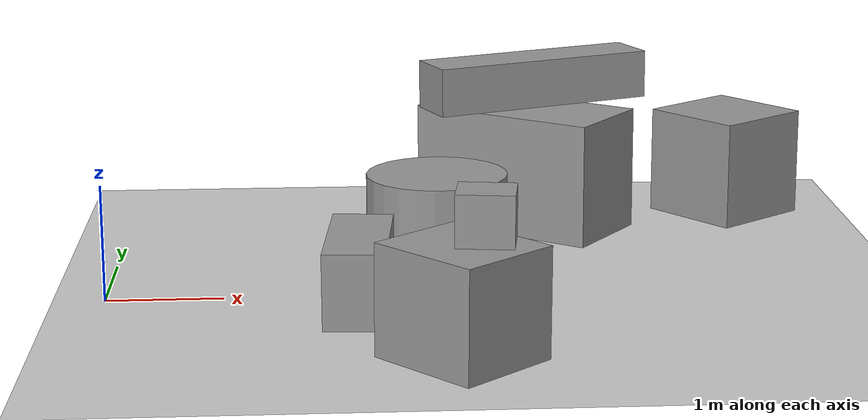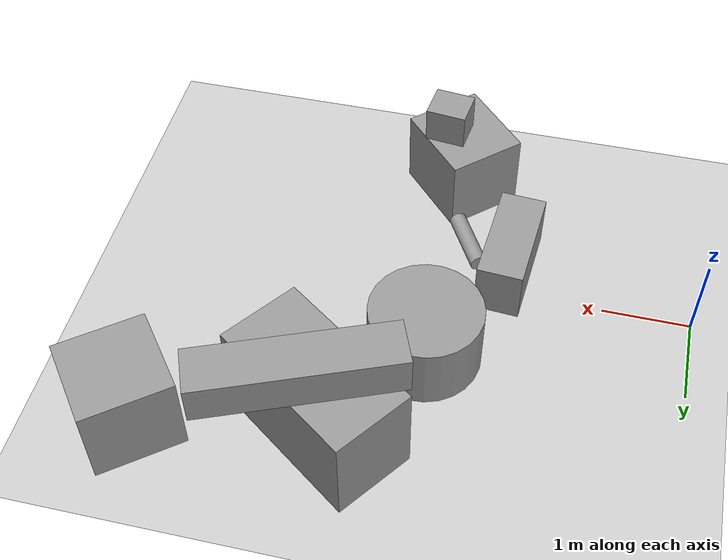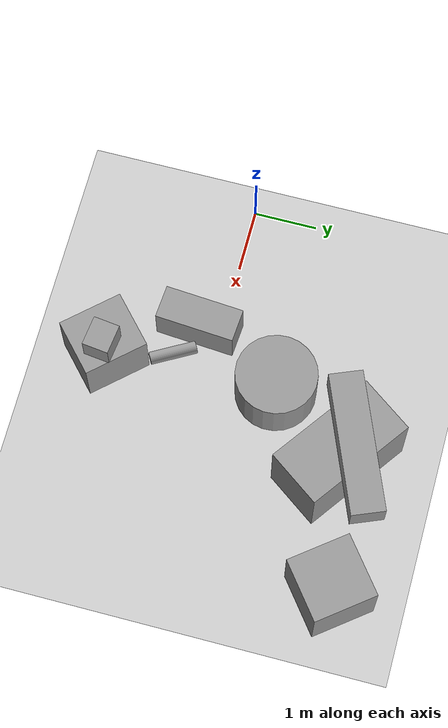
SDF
<sdf version="1.6">
 <world name="default">
  <light name="sun" type="directional">
   <pose>0 0 10 0 -0 0</pose>
   <diffuse>0.8 0.8 0.8 1</diffuse>
   <specular>0.2 0.2 0.2 1</specular>
   <attenuation>
    <range>1000</range>
    <constant>0.9</constant>
    <linear>0.01</linear>
    <quadratic>0.001</quadratic>
   </attenuation>
   <direction>-0.5 0.1 -0.9</direction>
  </light>
  <model name="ground_plane">
   <static>1</static>
   <link name="link">
    <collision name="collision">
     <geometry><plane><normal>0 0 1</normal><size>100 100</size></plane></geometry>
     <surface>
      <contact><collide_bitmask>65535</collide_bitmask></contact>
      <friction><ode><mu>100</mu><mu2>50</mu2></ode></friction>
     </surface>
    </collision>
    <visual name="visual">
     <cast_shadows>0</cast_shadows>
     <geometry><plane><normal>0 0 1</normal><size>100 100</size></plane></geometry>
     <material>
      <script><uri>file://media/materials/scripts/gazebo.material</uri><name>Gazebo/Grey</name></script>
     </material>
    </visual>
   </link>
  </model>
  <gravity>0 0 -9.8</gravity>
  <magnetic_field>6e-06 2.3e-05 -4.2e-05</magnetic_field>
  <atmosphere type="adiabatic"/>
  <physics name="default_physics" default="0" type="ode">
   <max_step_size>0.001</max_step_size>
   <real_time_factor>1</real_time_factor>
   <real_time_update_rate>1000</real_time_update_rate>
  </physics>
  <scene><ambient>0.4 0.4 0.4 1</ambient><background>0.7 0.7 0.7 1</background><shadows>1</shadows></scene>
  <audio><device>default</device></audio>
  <spherical_coordinates>
   <surface_model>EARTH_WGS84</surface_model>
   <latitude_deg>0</latitude_deg>
   <longitude_deg>0</longitude_deg>
   <elevation>0</elevation>
   <heading_deg>0</heading_deg>
  </spherical_coordinates>
  <model name="unit_box">
   <pose>5.74458 2.62125 0.5 -1.5708 -0 0.662</pose>
   <link name="link">
    <inertial>
     <mass>1</mass>
     <inertia>
      <ixx>0.166667</ixx>
      <ixy>0</ixy>
      <ixz>0</ixz>
      <iyy>0.166667</iyy>
      <iyz>0</iyz>
      <izz>0.166667</izz>
     </inertia>
    </inertial>
    <collision name="collision"><geometry><box><size>1 1 1</size></box></geometry></collision>
    <visual name="visual">
     <geometry><box><size>1 1 1</size></box></geometry>
     <material>
      <script><name>Gazebo/Grey</name><uri>file://media/materials/scripts/gazebo.material</uri></script>
     </material>
    </visual>
   </link>
  </model>
  <model name="unit_cylinder">
   <pose>2.85675 1.06138 0.399863 5e-06 -7e-06 0.192817</pose>
   <link name="link">
    <inertial>
     <mass>1</mass>
     <inertia><ixx>0.145833</ixx><ixy>0</ixy><ixz>0</ixz><iyy>0.145833</iyy><iyz>0</iyz><izz>0.125</izz></inertia>
    </inertial>
    <collision name="collision">
     <geometry><cylinder><radius>0.632287</radius><length>0.799734</length></cylinder></geometry>
    </collision>
    <visual name="visual">
     <geometry><cylinder><radius>0.632287</radius><length>0.799734</length></cylinder></geometry>
     <material>
      <script><name>Gazebo/Grey</name><uri>file://media/materials/scripts/gazebo.material</uri></script>
     </material>
    </visual>
   </link>
  </model>
  <model name="unit_box_0">
   <pose>3.75226 2.25424 0.568104 -1e-06 1e-06 -0.624374</pose>
   <link name="link">
    <inertial>
     <mass>1</mass>
     <inertia>
      <ixx>0.166667</ixx>
      <ixy>0</ixy>
      <ixz>0</ixz>
      <iyy>0.166667</iyy>
      <iyz>0</iyz>
      <izz>0.166667</izz>
     </inertia>
    </inertial>
    <collision name="collision"><geometry><box><size>1.8156 0.94942 1.13621</size></box></geometry></collision>
    <visual name="visual">
     <geometry><box><size>1.8156 0.94942 1.13621</size></box></geometry>
     <material>
      <script><name>Gazebo/Grey</name><uri>file://media/materials/scripts/gazebo.material</uri></script>
     </material>
    </visual>
   </link>
  </model>
  <model name="unit_box_1">
   <pose>3.1162 -1.58335 1.12457 -0.002781 0.007015 -0.121734</pose>
   <link name="link">
    <inertial>
     <mass>1</mass>
     <inertia>
      <ixx>0.166667</ixx>
      <ixy>0</ixy>
      <ixz>0</ixz>
      <iyy>0.166667</iyy>
      <iyz>0</iyz>
      <izz>0.166667</izz>
     </inertia>
    </inertial>
    <collision name="collision"><geometry><box><size>0.463088 0.410212 0.42263</size></box></geometry></collision>
    <visual name="visual">
     <geometry><box><size>0.463088 0.410212 0.42263</size></box></geometry>
     <material>
      <script><name>Gazebo/Grey</name><uri>file://media/materials/scripts/gazebo.material</uri></script>
     </material>
    </visual>
   </link>
  </model>
  <model name="unit_box_2">
   <pose>2.93195 -1.63132 0.45297 1.57429 0.006662 0.739096</pose>
   <link name="link">
    <inertial>
     <mass>1</mass>
     <inertia>
      <ixx>0.166667</ixx>
      <ixy>0</ixy>
      <ixz>0</ixz>
      <iyy>0.166667</iyy>
      <iyz>0</iyz>
      <izz>0.166667</izz>
     </inertia>
    </inertial>
    <collision name="collision"><geometry><box><size>0.916266 0.923462 1.02134</size></box></geometry></collision>
    <visual name="visual">
     <geometry><box><size>0.916266 0.923462 1.02134</size></box></geometry>
     <material>
      <script><name>Gazebo/Grey</name><uri>file://media/materials/scripts/gazebo.material</uri></script>
     </material>
    </visual>
   </link>
  </model>
  <model name="unit_cylinder_0">
   <pose>2.67047 -0.628929 0.09817 1.5708 -1.50621 0.518869</pose>
   <link name="link">
    <inertial>
     <mass>1</mass>
     <inertia><ixx>0.145833</ixx><ixy>0</ixy><ixz>0</ixz><iyy>0.145833</iyy><iyz>0</iyz><izz>0.125</izz></inertia>
    </inertial>
    <collision name="collision">
     <geometry><cylinder><radius>0.0981711</radius><length>0.738976</length></cylinder></geometry>
    </collision>
    <visual name="visual">
     <geometry><cylinder><radius>0.0981711</radius><length>0.738976</length></cylinder></geometry>
     <material>
      <script><name>Gazebo/Grey</name><uri>file://media/materials/scripts/gazebo.material</uri></script>
     </material>
    </visual>
   </link>
  </model>
  <model name="unit_box_3">
   <pose>3.85114 2.49503 1.36008 2.47852 1.57077 1.2977</pose>
   <link name="link">
    <inertial>
     <mass>1</mass>
     <inertia>
      <ixx>0.166667</ixx>
      <ixy>0</ixy>
      <ixz>0</ixz>
      <iyy>0.166667</iyy>
      <iyz>0</iyz>
      <izz>0.166667</izz>
     </inertia>
    </inertial>
    <collision name="collision"><geometry><box><size>0.44775 2.16208 0.51482</size></box></geometry></collision>
    <visual name="visual">
     <geometry><box><size>0.44775 2.16208 0.51482</size></box></geometry>
     <material>
      <script><name>Gazebo/Grey</name><uri>file://media/materials/scripts/gazebo.material</uri></script>
     </material>
    </visual>
   </link>
  </model>
  <model name="unit_box_4">
   <pose>2.14161 -0.340354 0.323607 0 -3e-06 -0.07434</pose>
   <link name="link">
    <inertial>
     <mass>1</mass>
     <inertia>
      <ixx>0.166667</ixx>
      <ixy>0</ixy>
      <ixz>0</ixz>
      <iyy>0.166667</iyy>
      <iyz>0</iyz>
      <izz>0.166667</izz>
     </inertia>
    </inertial>
    <collision name="collision"><geometry><box><size>0.521754 1.2455 0.647212</size></box></geometry></collision>
    <visual name="visual">
     <geometry><box><size>0.521754 1.2455 0.647212</size></box></geometry>
     <material>
      <script><name>Gazebo/Grey</name><uri>file://media/materials/scripts/gazebo.material</uri></script>
     </material>
    </visual>
   </link>
  </model>
  <light name="user_spot_light_0" type="spot">
   <pose>4.94436 -3.05392 1 0 -0 0</pose>
   <diffuse>0.5 0.5 0.5 1</diffuse>
   <specular>0.1 0.1 0.1 1</specular>
   <direction>0 0 -1</direction>
   <attenuation>
    <range>20</range>
    <constant>0.5</constant>
    <linear>0.01</linear>
    <quadratic>0.001</quadratic>
   </attenuation>
   <cast_shadows>0</cast_shadows>
   <spot><inner_angle>0.6</inner_angle><outer_angle>1</outer_angle><falloff>1</falloff></spot>
  </light>
 </world>
</sdf>
